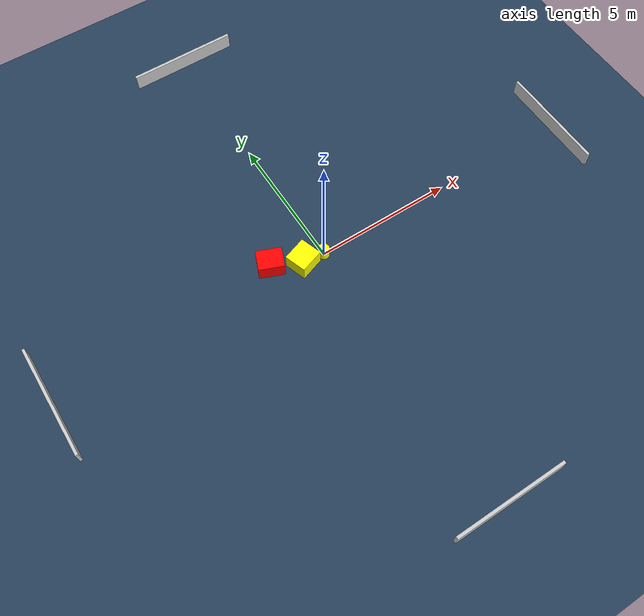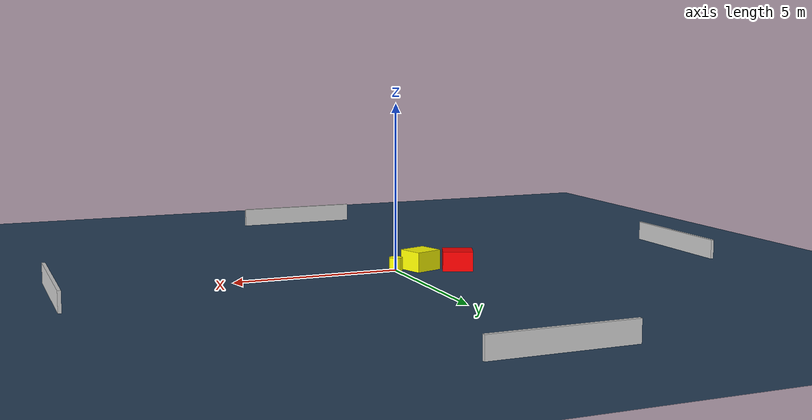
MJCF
<?xml version="1.0" ?>
<mujoco model="generated_environment">
  <option timestep="0.01" integrator="RK4" cone="elliptic"/>
  <default>
    <geom density="1"/>
  </default>
  <asset>
    <texture builtin="gradient" height="3072" name="skybox" rgb1="0.3 0.5 0.7" rgb2="0 0 0" type="skybox" width="512"/>
    <texture builtin="checker" height="300" name="groundplane" rgb1="0.2 0.3 0.4" rgb2="0.1 0.2 0.3" type="2d" width="300"/>
    <material name="groundplane" reflectance="0.2" texrepeat="5 5" texture="groundplane"/>
  </asset>
  <worldbody>
    <light dir="0 0 -1" directional="true" pos="0 0 1.5"/>
    <geom condim="3" friction="0.5 0.005 0.001" material="groundplane" name="floor" pos="0 0 0" size="0 0 0.05" type="plane"/>
    <body name="walls">
      <geom name="wall_1" condim="4" pos="-10.0 0.0 0.3" rgba="0.800000011920929 0.800000011920929 0.800000011920929 1.0" size="0.05 2.0 0.3" type="box"/>
      <geom name="wall_2" condim="4" pos="10.0 0.0 0.3" rgba="0.800000011920929 0.800000011920929 0.800000011920929 1.0" size="0.05 2.0 0.3" type="box"/>
      <geom name="wall_3" condim="4" pos="0.0 -10.0 0.3" rgba="0.800000011920929 0.800000011920929 0.800000011920929 1.0" size="2.0 0.05 0.3" type="box"/>
      <geom name="wall_4" condim="4" pos="0.0 10.0 0.3" rgba="0.800000011920929 0.800000011920929 0.800000011920929 1.0" size="2.0 0.05 0.3" type="box"/>
    </body>
    <body name="robot">
      <joint name="joint_x" type="slide" pos="0 0 0" axis="1 0 0"/>
      <joint name="joint_y" type="slide" pos="0 0 0" axis="0 1 0"/>
      <geom name="robot" type="cylinder" pos="0.0 0.0 0.2" size="0.2 0.2 0.0" mass="5.0" friction="1.0 0.005 0.0001" condim="4" rgba="1.0 1.0 0.0 1.0"/>
    </body>
    <body name="obstacle_1_movable">
      <geom name="obstacle_1_movable" condim="4" pos="-0.771647925266871 0.08695928855326164 0.3" euler="0 0 288.82873204466335" friction="0.0 0.005 0.001" rgba="1.0 1.0 0.0 1.0" size="0.3970301494354086 0.4373966597712065 0.3" type="box" mass="0.1"/>
      <joint type="free"/>
    </body>
    <body name="obstacle_2_static">
      <geom name="obstacle_2_static" condim="4" pos="-1.7809054344248385 0.5616943355148911 0.3" euler="0 0 247.8097770629644" friction="0.0 0.005 0.001" rgba="1.0 0.0 0.0 1.0" size="0.3679872845139806 0.4530626148342376 0.3" type="box"/>
    </body>
  </worldbody>
  <actuator>
    <motor name="actuator_x" joint="joint_x" gear="1" ctrlrange="-1 1"/>
    <motor name="actuator_y" joint="joint_y" gear="1" ctrlrange="-1 1"/>
  </actuator>
</mujoco>
